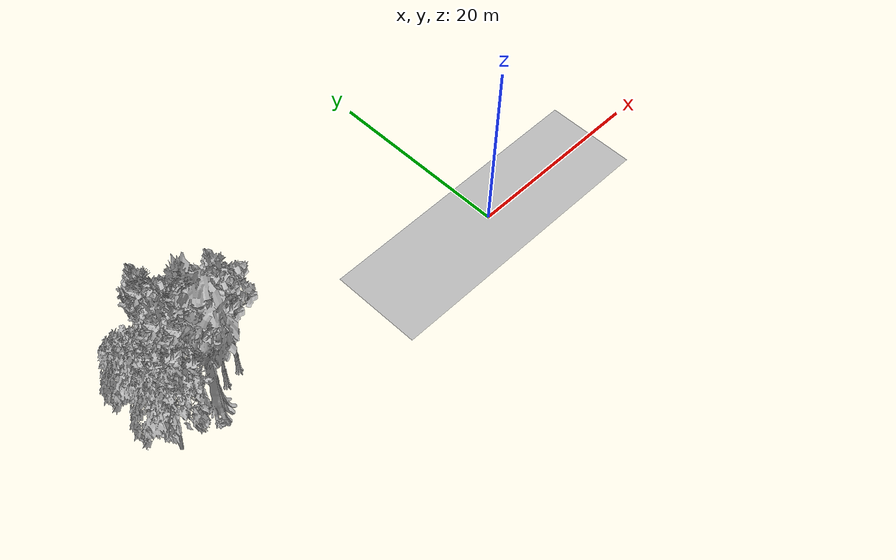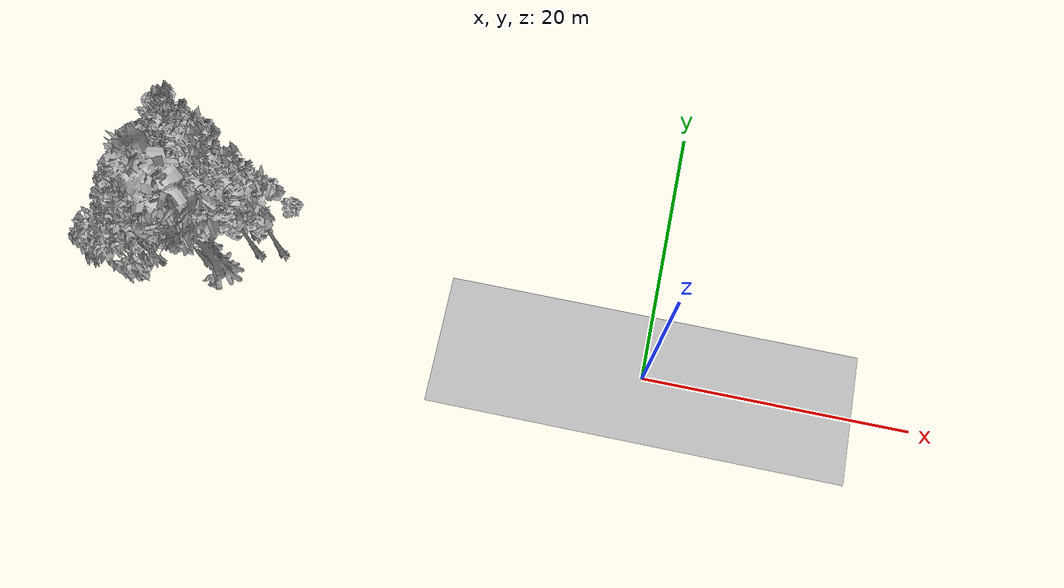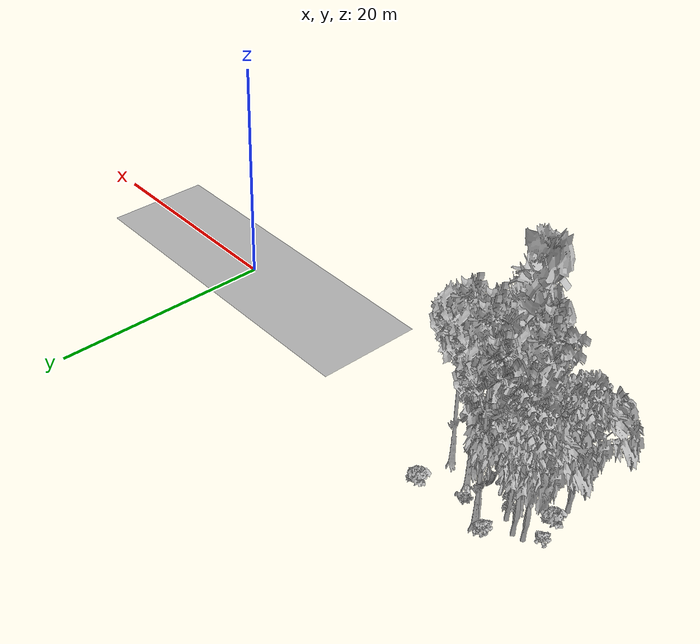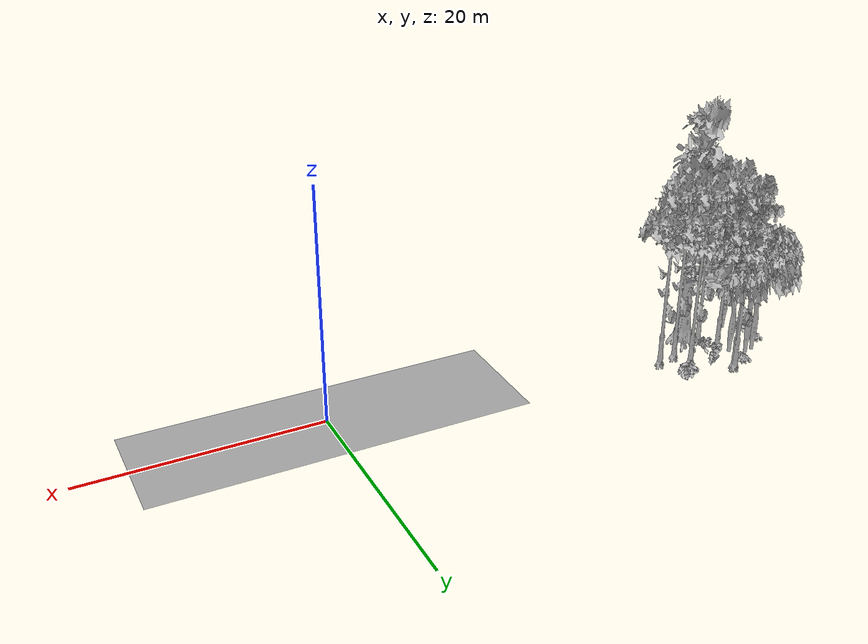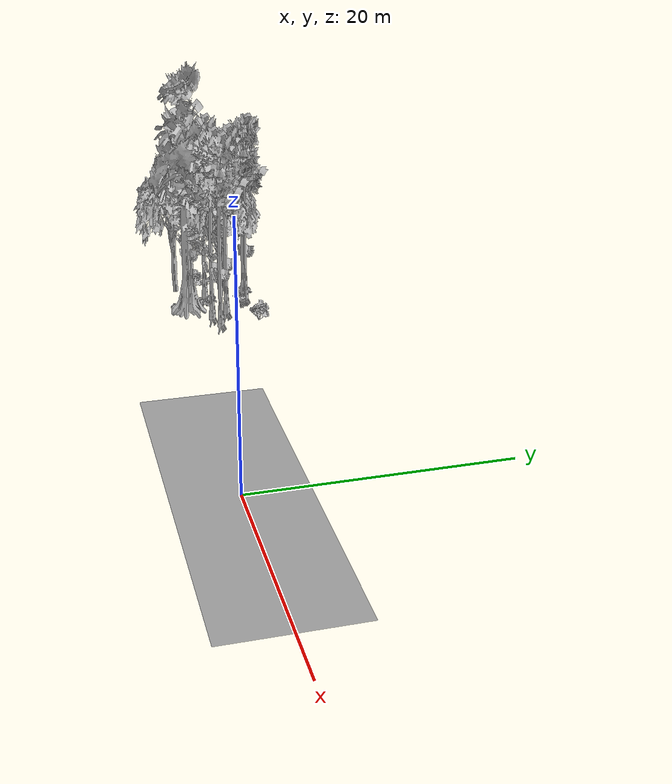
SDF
<sdf version="1.7">
 <world name="default">
  <model name="ground_plane">
   <static>1</static>
   <link name="link">
    <collision name="collision">
     <geometry><plane><normal>0 0 1</normal><size>100 100</size></plane></geometry>
     <surface><contact><ode><min_depth>0.01</min_depth><max_vel>0</max_vel></ode></contact></surface>
    </collision>
    <visual name="grass">
     <cast_shadows>0</cast_shadows>
     <geometry>
      <mesh>
       <scale>0.5814285714285714 0.18142857142857144 0.1</scale>
       <uri>file://grass_plane/meshes/grass_plane.dae</uri>
      </mesh>
     </geometry>
    </visual>
   </link>
  </model>
  <model name="Tree 6">
   <static>1</static>
   <pose>-33.216674035426486 1.9118461626862846 0 1.57079 -0 0</pose>
   <link name="link">
    <collision name="collision">
     <geometry><mesh><scale>3.5 5 3.5</scale><uri>model://tree_4/meshes/tree_4.obj</uri></mesh></geometry>
    </collision>
    <visual name="visual">
     <geometry><mesh><scale>3.5 5 3.5</scale><uri>model://tree_4/meshes/tree_4.obj</uri></mesh></geometry>
    </visual>
   </link>
  </model>
  <model name="Tree 7">
   <static>1</static>
   <pose>-37.02748500600414 5.943462525791755 0 1.57079 -0 0</pose>
   <link name="link">
    <collision name="collision">
     <geometry><mesh><scale>3.5 5 3.5</scale><uri>model://tree_2/meshes/tree_2.obj</uri></mesh></geometry>
    </collision>
    <visual name="visual">
     <geometry><mesh><scale>3.5 5 3.5</scale><uri>model://tree_2/meshes/tree_2.obj</uri></mesh></geometry>
    </visual>
   </link>
  </model>
  <model name="Tree 17">
   <static>1</static>
   <pose>-38.11614056664186 1.3759694158396307 0 1.57079 -0 0</pose>
   <link name="link">
    <collision name="collision">
     <geometry><mesh><scale>3.5 5 3.5</scale><uri>model://tree_2/meshes/tree_2.obj</uri></mesh></geometry>
    </collision>
    <visual name="visual">
     <geometry><mesh><scale>3.5 5 3.5</scale><uri>model://tree_2/meshes/tree_2.obj</uri></mesh></geometry>
    </visual>
   </link>
  </model>
  <model name="Tree 62">
   <static>1</static>
   <pose>-30.975180424221428 3.6503201910897367 0 1.57079 -0 0</pose>
   <link name="link">
    <collision name="collision">
     <geometry><mesh><scale>3.5 5 3.5</scale><uri>model://tree_9/meshes/tree_9.obj</uri></mesh></geometry>
    </collision>
    <visual name="visual">
     <geometry><mesh><scale>3.5 5 3.5</scale><uri>model://tree_9/meshes/tree_9.obj</uri></mesh></geometry>
    </visual>
   </link>
  </model>
  <model name="Tree 82">
   <static>1</static>
   <pose>-34.67845466346566 2.188584790509566 0 1.57079 -0 0</pose>
   <link name="link">
    <collision name="collision">
     <geometry><mesh><scale>3.5 5 3.5</scale><uri>model://tree_9/meshes/tree_9.obj</uri></mesh></geometry>
    </collision>
    <visual name="visual">
     <geometry><mesh><scale>3.5 5 3.5</scale><uri>model://tree_9/meshes/tree_9.obj</uri></mesh></geometry>
    </visual>
   </link>
  </model>
  <model name="Tree 202">
   <static>1</static>
   <pose>-34.64424036627175 7.241921819741805 0 1.57079 -0 0</pose>
   <link name="link">
    <collision name="collision">
     <geometry><mesh><scale>3.5 5 3.5</scale><uri>model://tree_9/meshes/tree_9.obj</uri></mesh></geometry>
    </collision>
    <visual name="visual">
     <geometry><mesh><scale>3.5 5 3.5</scale><uri>model://tree_9/meshes/tree_9.obj</uri></mesh></geometry>
    </visual>
   </link>
  </model>
  <model name="Tree 210">
   <static>1</static>
   <pose>-34.637304954052915 7.4175444959800245 0 1.57079 -0 0</pose>
   <link name="link">
    <collision name="collision">
     <geometry><mesh><scale>3.5 5 3.5</scale><uri>model://tree_9/meshes/tree_9.obj</uri></mesh></geometry>
    </collision>
    <visual name="visual">
     <geometry><mesh><scale>3.5 5 3.5</scale><uri>model://tree_9/meshes/tree_9.obj</uri></mesh></geometry>
    </visual>
   </link>
  </model>
  <model name="Tree 261">
   <static>1</static>
   <pose>-29.17156769540096 4.095154939520761 0 1.57079 -0 0</pose>
   <link name="link">
    <collision name="collision">
     <geometry><mesh><scale>3.5 5 3.5</scale><uri>model://tree_9/meshes/tree_9.obj</uri></mesh></geometry>
    </collision>
    <visual name="visual">
     <geometry><mesh><scale>3.5 5 3.5</scale><uri>model://tree_9/meshes/tree_9.obj</uri></mesh></geometry>
    </visual>
   </link>
  </model>
  <model name="Tree 337">
   <static>1</static>
   <pose>-35.59996004006478 3.784075954497407 0 1.57079 -0 0</pose>
   <link name="link">
    <collision name="collision">
     <geometry><mesh><scale>3.5 5 3.5</scale><uri>model://tree_9/meshes/tree_9.obj</uri></mesh></geometry>
    </collision>
    <visual name="visual">
     <geometry><mesh><scale>3.5 5 3.5</scale><uri>model://tree_9/meshes/tree_9.obj</uri></mesh></geometry>
    </visual>
   </link>
  </model>
  <model name="Tree 351">
   <static>1</static>
   <pose>-31.67678753281392 5.07961883950113 0 1.57079 -0 0</pose>
   <link name="link">
    <collision name="collision">
     <geometry><mesh><scale>3.5 5 3.5</scale><uri>model://tree_9/meshes/tree_9.obj</uri></mesh></geometry>
    </collision>
    <visual name="visual">
     <geometry><mesh><scale>3.5 5 3.5</scale><uri>model://tree_9/meshes/tree_9.obj</uri></mesh></geometry>
    </visual>
   </link>
  </model>
  <model name="Tree 380">
   <static>1</static>
   <pose>-35.80327348716086 5.246738210245265 0 1.57079 -0 0</pose>
   <link name="link">
    <collision name="collision">
     <geometry><mesh><scale>3.5 5 3.5</scale><uri>model://tree_2/meshes/tree_2.obj</uri></mesh></geometry>
    </collision>
    <visual name="visual">
     <geometry><mesh><scale>3.5 5 3.5</scale><uri>model://tree_2/meshes/tree_2.obj</uri></mesh></geometry>
    </visual>
   </link>
  </model>
  <model name="Tree 419">
   <static>1</static>
   <pose>-37.838969811114474 5.794920594107946 0 1.57079 -0 0</pose>
   <link name="link">
    <collision name="collision">
     <geometry><mesh><scale>3.5 5 3.5</scale><uri>model://tree_2/meshes/tree_2.obj</uri></mesh></geometry>
    </collision>
    <visual name="visual">
     <geometry><mesh><scale>3.5 5 3.5</scale><uri>model://tree_2/meshes/tree_2.obj</uri></mesh></geometry>
    </visual>
   </link>
  </model>
  <model name="Bush 53">
   <static>1</static>
   <pose>-38.27312971425981 3.1451076952265744 0 1.57079 -0 0</pose>
   <link name="link">
    <collision name="collision">
     <geometry><mesh><scale>2 2 2</scale><uri>model://bush_1/meshes/bush_1.obj</uri></mesh></geometry>
     <surface><contact><collide_without_contact>false</collide_without_contact></contact></surface>
    </collision>
    <visual name="visual">
     <geometry><mesh><scale>2 2 2</scale><uri>model://bush_1/meshes/bush_1.obj</uri></mesh></geometry>
    </visual>
   </link>
  </model>
  <model name="Bush 90">
   <static>1</static>
   <pose>-34.92248305111311 2.9786409049989047 0 1.57079 -0 0</pose>
   <link name="link">
    <collision name="collision">
     <geometry><mesh><scale>2 2 2</scale><uri>model://bush_2/meshes/bush_2.obj</uri></mesh></geometry>
     <surface><contact><collide_without_contact>false</collide_without_contact></contact></surface>
    </collision>
    <visual name="visual">
     <geometry><mesh><scale>2 2 2</scale><uri>model://bush_2/meshes/bush_2.obj</uri></mesh></geometry>
    </visual>
   </link>
  </model>
  <model name="Bush 188">
   <static>1</static>
   <pose>-33.9905174821706 0.8234329214626612 0 1.57079 -0 0</pose>
   <link name="link">
    <collision name="collision">
     <geometry><mesh><scale>2 2 2</scale><uri>model://bush_2/meshes/bush_2.obj</uri></mesh></geometry>
     <surface><contact><collide_without_contact>false</collide_without_contact></contact></surface>
    </collision>
    <visual name="visual">
     <geometry><mesh><scale>2 2 2</scale><uri>model://bush_2/meshes/bush_2.obj</uri></mesh></geometry>
    </visual>
   </link>
  </model>
  <model name="Bush 189">
   <static>1</static>
   <pose>-35.25184523445026 7.601991743082426 0 1.57079 -0 0</pose>
   <link name="link">
    <collision name="collision">
     <geometry><mesh><scale>2 2 2</scale><uri>model://bush_3/meshes/bush_3.obj</uri></mesh></geometry>
     <surface><contact><collide_without_contact>false</collide_without_contact></contact></surface>
    </collision>
    <visual name="visual">
     <geometry><mesh><scale>2 2 2</scale><uri>model://bush_3/meshes/bush_3.obj</uri></mesh></geometry>
    </visual>
   </link>
  </model>
  <model name="Bush 233">
   <static>1</static>
   <pose>-38.66228885066518 5.001542251385565 0 1.57079 -0 0</pose>
   <link name="link">
    <collision name="collision">
     <geometry><mesh><scale>2 2 2</scale><uri>model://bush_3/meshes/bush_3.obj</uri></mesh></geometry>
     <surface><contact><collide_without_contact>false</collide_without_contact></contact></surface>
    </collision>
    <visual name="visual">
     <geometry><mesh><scale>2 2 2</scale><uri>model://bush_3/meshes/bush_3.obj</uri></mesh></geometry>
    </visual>
   </link>
  </model>
  <model name="Bush 240">
   <static>1</static>
   <pose>-32.71524770706142 6.584101264305456 0 1.57079 -0 0</pose>
   <link name="link">
    <collision name="collision">
     <geometry><mesh><scale>2 2 2</scale><uri>model://bush_0/meshes/bush_0.obj</uri></mesh></geometry>
     <surface><contact><collide_without_contact>false</collide_without_contact></contact></surface>
    </collision>
    <visual name="visual">
     <geometry><mesh><scale>2 2 2</scale><uri>model://bush_0/meshes/bush_0.obj</uri></mesh></geometry>
    </visual>
   </link>
  </model>
  <model name="Bush 273">
   <static>1</static>
   <pose>-35.132442265700206 4.253835458735402 0 1.57079 -0 0</pose>
   <link name="link">
    <collision name="collision">
     <geometry><mesh><scale>2 2 2</scale><uri>model://bush_2/meshes/bush_2.obj</uri></mesh></geometry>
     <surface><contact><collide_without_contact>false</collide_without_contact></contact></surface>
    </collision>
    <visual name="visual">
     <geometry><mesh><scale>2 2 2</scale><uri>model://bush_2/meshes/bush_2.obj</uri></mesh></geometry>
    </visual>
   </link>
  </model>
  <model name="Bush 274">
   <static>1</static>
   <pose>-34.44974668225926 3.4354405070743894 0 1.57079 -0 0</pose>
   <link name="link">
    <collision name="collision">
     <geometry><mesh><scale>2 2 2</scale><uri>model://bush_2/meshes/bush_2.obj</uri></mesh></geometry>
     <surface><contact><collide_without_contact>false</collide_without_contact></contact></surface>
    </collision>
    <visual name="visual">
     <geometry><mesh><scale>2 2 2</scale><uri>model://bush_2/meshes/bush_2.obj</uri></mesh></geometry>
    </visual>
   </link>
  </model>
  <model name="Bush 286">
   <static>1</static>
   <pose>-29.292342517065254 7.560973421713211 0 1.57079 -0 0</pose>
   <link name="link">
    <collision name="collision">
     <geometry><mesh><scale>2 2 2</scale><uri>model://bush_1/meshes/bush_1.obj</uri></mesh></geometry>
     <surface><contact><collide_without_contact>false</collide_without_contact></contact></surface>
    </collision>
    <visual name="visual">
     <geometry><mesh><scale>2 2 2</scale><uri>model://bush_1/meshes/bush_1.obj</uri></mesh></geometry>
    </visual>
   </link>
  </model>
  <model name="Bush 332">
   <static>1</static>
   <pose>-35.33298807160545 7.251135541956685 0 1.57079 -0 0</pose>
   <link name="link">
    <collision name="collision">
     <geometry><mesh><scale>2 2 2</scale><uri>model://bush_3/meshes/bush_3.obj</uri></mesh></geometry>
     <surface><contact><collide_without_contact>false</collide_without_contact></contact></surface>
    </collision>
    <visual name="visual">
     <geometry><mesh><scale>2 2 2</scale><uri>model://bush_3/meshes/bush_3.obj</uri></mesh></geometry>
    </visual>
   </link>
  </model>
 </world>
</sdf>
